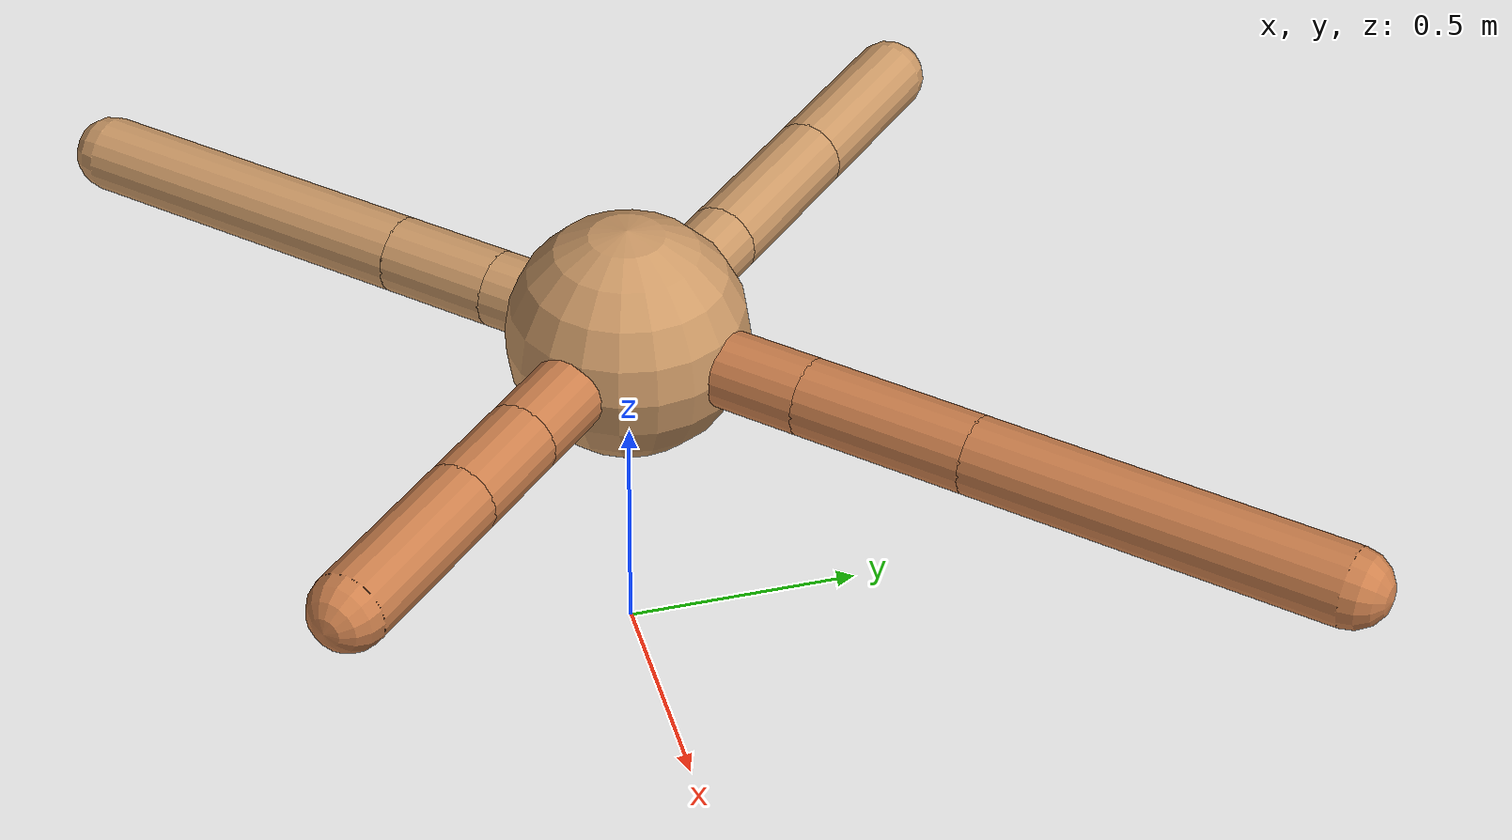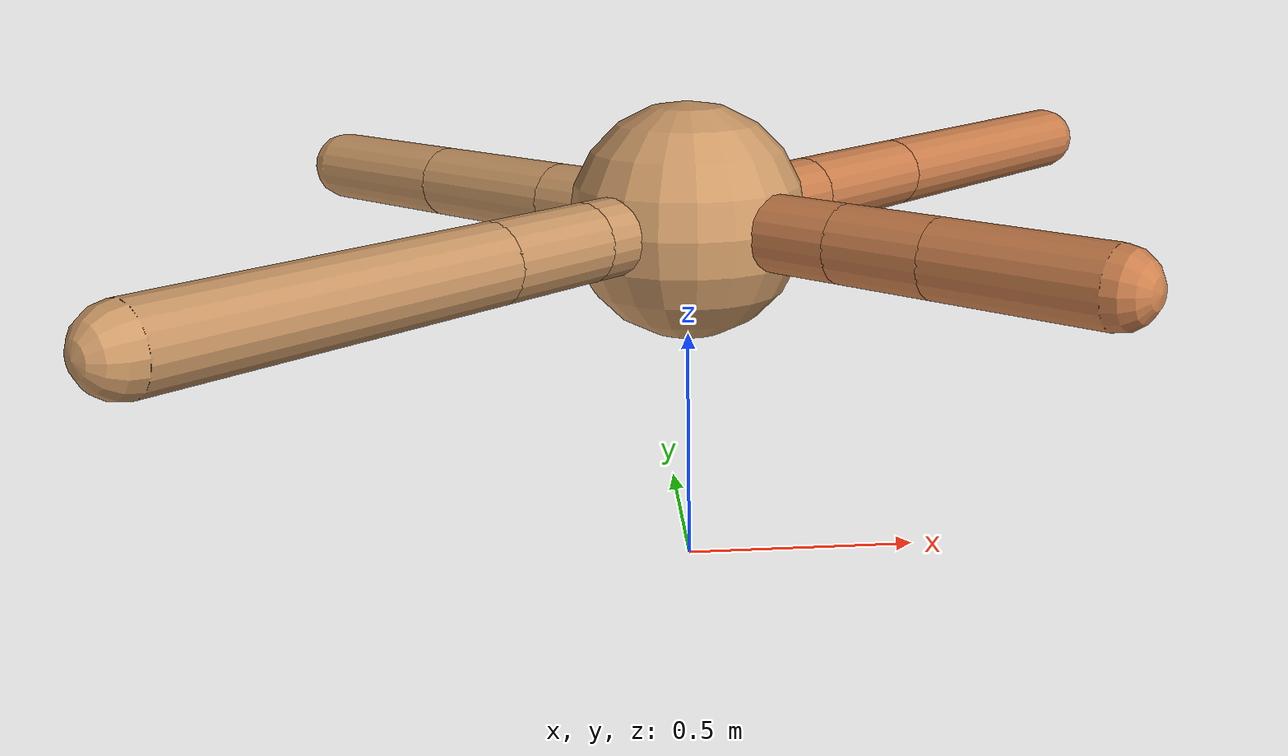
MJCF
<mujoco model="ant">
  <compiler angle="degree" coordinate="local" inertiafromgeom="true" />
  <option integrator="RK4" timestep="0.01" />
  <custom>
    <numeric data="0.0 0.0 0.55 1.0 0.0 0.0 0.0 0.0 1.0 0.0 -1.0 0.0 -1.0 0.0 1.0" name="init_qpos" />
  </custom>
  <default>
    <joint armature="1" damping="1" limited="true" />
    <geom conaffinity="0" condim="3" density="5.0" friction="1.5 0.1 0.1" margin="0.01" rgba="0.8 0.6 0.4 1" />
  </default>
  <worldbody>
    <body name="torso" pos="0 0 0.75">
      <geom name="torso_geom" pos="0 0 0" size="0.25" type="sphere" />

      <body name="front_left_leg" pos="0 0 0">
        <geom fromto="0.0 0.0 0.0 0.2923870968241903 0.2923870968241903 0.0" name="aux_1_geom" size="0.08" type="capsule" rgba=".8 .5 .3 1" />
        <body name="aux_1" pos="0.2923870968241903 0.2923870968241903 0.0">
          <joint axis="0 0 1" name="hip_1" pos="0.0 0.0 0.0" range="-40 40" type="hinge" />
          <geom fromto="0.0 0.0 0.0 0.25609526767611485 0.25609526767611485 0.0" name="left_leg_geom" size="0.08" type="capsule" rgba=".8 .5 .3 1" />
          <body pos="0.25609526767611485 0.25609526767611485 0.0" name="front_left_foot">
            <joint axis="-1 1 0" name="ankle_1" pos="0.0 0.0 0.0" range="30 100" type="hinge" />
            <geom fromto="0.0 0.0 0.0 0.5436495758801874 0.5436495758801874 0.0" name="left_ankle_geom" size="0.08" type="capsule" rgba=".8 .5 .3 1" />
          </body>
        </body>
      </body>
      <body name="front_right_leg" pos="0 0 0">
        <geom fromto="0.0 0.0 0.0 -0.2670463083433714 0.2670463083433714 0.0" name="aux_2_geom" size="0.08" type="capsule" />
        <body name="aux_2" pos="-0.2670463083433714 0.2670463083433714 0.0">
          <joint axis="0 0 1" name="hip_2" pos="0.0 0.0 0.0" range="-40 40" type="hinge" />
          <geom fromto="0.0 0.0 0.0 -0.26370678630527605 0.26370678630527605 0.0" name="right_leg_geom" size="0.08" type="capsule" />
          <body pos="-0.26370678630527605 0.26370678630527605 0.0" name="front_right_foot">
            <joint axis="1 1 0" name="ankle_2" pos="0.0 0.0 0.0" range="-100 -30" type="hinge" />
            <geom fromto="0.0 0.0 0.0 -0.2666020430121183 0.2666020430121183 0.0" name="right_ankle_geom" size="0.08" type="capsule" />
          </body>
        </body>
      </body>
      <body name="left_back_leg" pos="0 0 0">
        <geom fromto="0.0 0.0 0.0 -0.21854486600558864 -0.21854486600558864 0.0" name="aux_3_geom" size="0.08" type="capsule" />
        <body name="aux_3" pos="-0.21854486600558864 -0.21854486600558864 0.0">
          <joint axis="0 0 1" name="hip_3" pos="0.0 0.0 0.0" range="-40 40" type="hinge" />
          <geom fromto="0.0 0.0 0.0 -0.17043831862559958 -0.17043831862559958 0.0" name="back_leg_geom" size="0.08" type="capsule" />
          <body pos="-0.17043831862559958 -0.17043831862559958 0.0" name="left_back_foot">
            <joint axis="-1 1 0" name="ankle_3" pos="0.0 0.0 0.0" range="-100 -30" type="hinge" />
            <geom fromto="0.0 0.0 0.0 -0.5319190070826908 -0.5319190070826908 0.0" name="third_ankle_geom" size="0.08" type="capsule" />
          </body>
        </body>
      </body>
      <body name="right_back_leg" pos="0 0 0">
        <geom fromto="0.0 0.0 0.0 0.2827670865051299 -0.2827670865051299 0.0" name="aux_4_geom" size="0.08" type="capsule" rgba=".8 .5 .3 1" />
        <body name="aux_4" pos="0.2827670865051299 -0.2827670865051299 0.0">
          <joint axis="0 0 1" name="hip_4" pos="0.0 0.0 0.0" range="-40 40" type="hinge" />
          <geom fromto="0.0 0.0 0.0 0.14975557515129917 -0.14975557515129917 0.0" name="rightback_leg_geom" size="0.08" type="capsule" rgba=".8 .5 .3 1" />
          <body pos="0.14975557515129917 -0.14975557515129917 0.0" name="right_back_foot">
            <joint axis="1 1 0" name="ankle_4" pos="0.0 0.0 0.0" range="30 100" type="hinge" />
            <geom fromto="0.0 0.0 0.0 0.2594082714422703 -0.2594082714422703 0.0" name="fourth_ankle_geom" size="0.08" type="capsule" rgba=".8 .5 .3 1" />
          </body>
        </body>
      </body>
    </body>
  </worldbody>
  <actuator>
    <motor ctrllimited="true" ctrlrange="-1.0 1.0" joint="hip_4" gear="150" />
    <motor ctrllimited="true" ctrlrange="-1.0 1.0" joint="ankle_4" gear="150" />
    <motor ctrllimited="true" ctrlrange="-1.0 1.0" joint="hip_1" gear="150" />
    <motor ctrllimited="true" ctrlrange="-1.0 1.0" joint="ankle_1" gear="150" />
    <motor ctrllimited="true" ctrlrange="-1.0 1.0" joint="hip_2" gear="150" />
    <motor ctrllimited="true" ctrlrange="-1.0 1.0" joint="ankle_2" gear="150" />
    <motor ctrllimited="true" ctrlrange="-1.0 1.0" joint="hip_3" gear="150" />
    <motor ctrllimited="true" ctrlrange="-1.0 1.0" joint="ankle_3" gear="150" />
  </actuator>
</mujoco>
